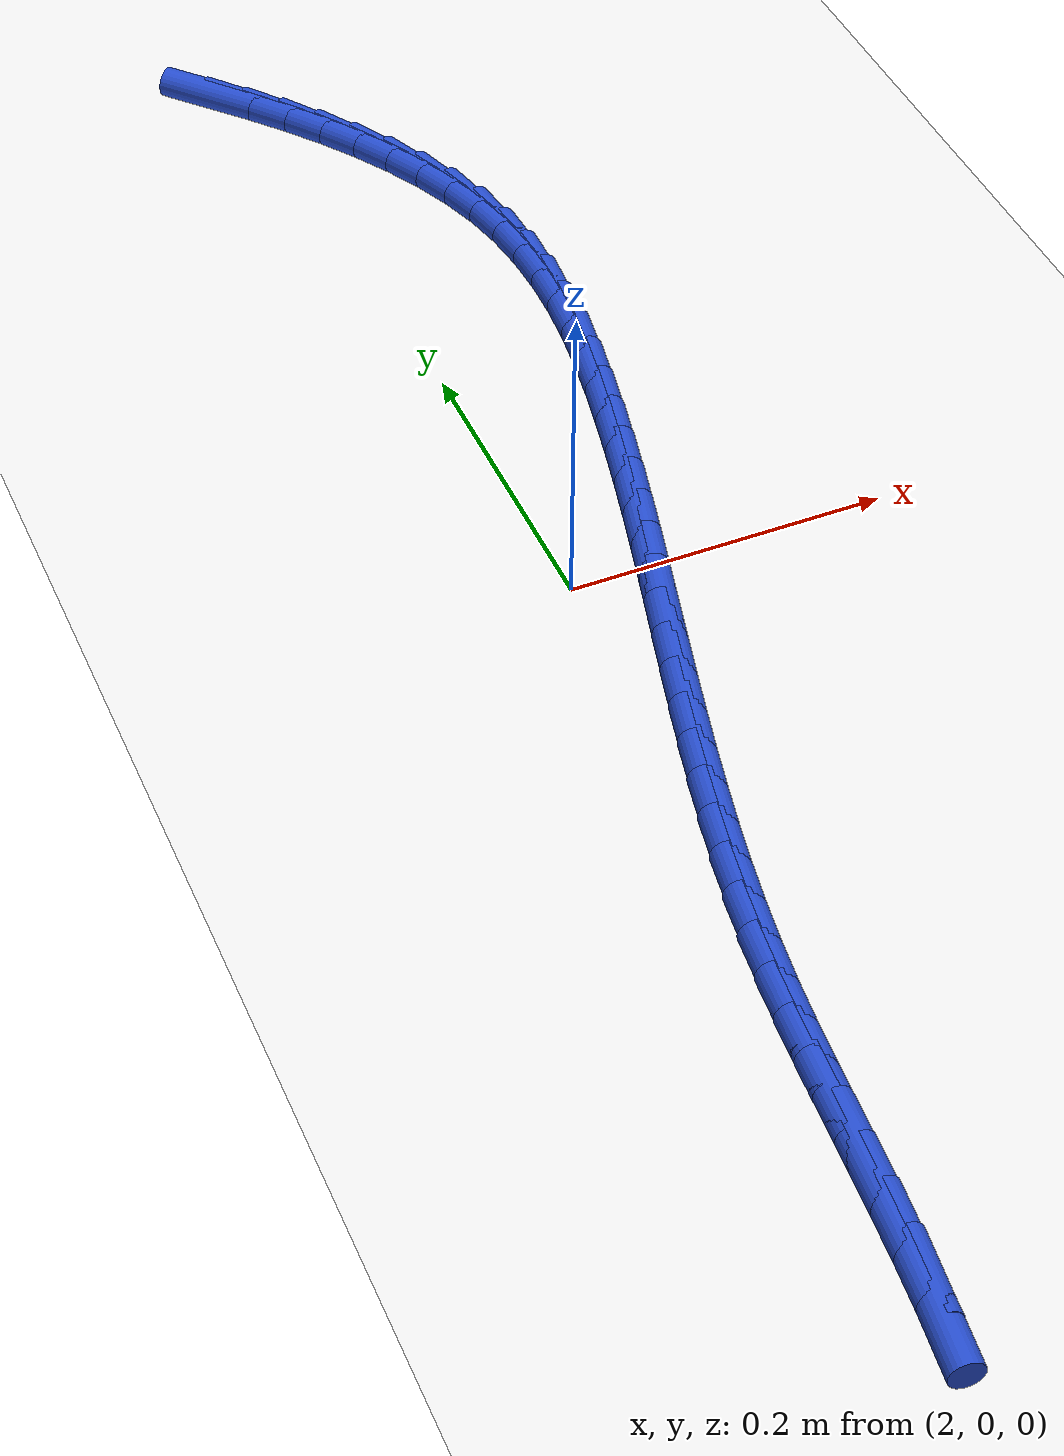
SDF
<sdf version="1.6">
 <world name="default">
  <model name="ground_plane">
   <static>1</static>
   <link name="link">
    <collision name="collision">
     <geometry><plane><normal>0 0 1</normal><size>100 100</size></plane></geometry>
     <surface><friction><ode><mu>100</mu><mu2>50</mu2></ode></friction></surface>
    </collision>
    <visual name="visual">
     <cast_shadows>0</cast_shadows>
     <geometry><plane><normal>0 0 1</normal><size>100 100</size></plane></geometry>
     <material>
      <script><uri>file://media/materials/scripts/gazebo.material</uri><name>Gazebo/WhiteGlow</name></script>
     </material>
    </visual>
   </link>
  </model>
  <model name="line">
   <link name="link_99">
    <pose>1.967739464041182 0.5320116297725063 0.01 0 1.57 -0.844578872773118</pose>
    <collision name="collision">
     <geometry><cylinder><radius>0.01</radius><length>0.08</length></cylinder></geometry>
    </collision>
    <visual name="visual">
     <material>
      <script><name>Gazebo/Blue</name><uri>file://media/materials/scripts/gazebo.material</uri></script>
     </material>
     <geometry><cylinder><radius>0.01</radius><length>0.08</length></cylinder></geometry>
    </visual>
   </link>
   <link name="link_100">
    <pose>1.9871933279019611 0.5101072970246364 0.01 0 1.57 -0.8795569927350394</pose>
    <collision name="collision">
     <geometry><cylinder><radius>0.01</radius><length>0.08</length></cylinder></geometry>
    </collision>
    <visual name="visual">
     <material>
      <script><name>Gazebo/Blue</name><uri>file://media/materials/scripts/gazebo.material</uri></script>
     </material>
     <geometry><cylinder><radius>0.01</radius><length>0.08</length></cylinder></geometry>
    </visual>
   </link>
   <link name="link_101">
    <pose>2.0057102659734163 0.48772821727000737 0.01 0 1.57 -0.9217736178952044</pose>
    <collision name="collision">
     <geometry><cylinder><radius>0.01</radius><length>0.08</length></cylinder></geometry>
    </collision>
    <visual name="visual">
     <material>
      <script><name>Gazebo/Blue</name><uri>file://media/materials/scripts/gazebo.material</uri></script>
     </material>
     <geometry><cylinder><radius>0.01</radius><length>0.08</length></cylinder></geometry>
    </visual>
   </link>
   <link name="link_102">
    <pose>2.0230717722713774 0.4648438856911025 0.01 0 1.57 -0.9718143163685902</pose>
    <collision name="collision">
     <geometry><cylinder><radius>0.01</radius><length>0.08</length></cylinder></geometry>
    </collision>
    <visual name="visual">
     <material>
      <script><name>Gazebo/Blue</name><uri>file://media/materials/scripts/gazebo.material</uri></script>
     </material>
     <geometry><cylinder><radius>0.01</radius><length>0.08</length></cylinder></geometry>
    </visual>
   </link>
   <link name="link_103">
    <pose>2.0390593408116717 0.4414237974704054 0.01 0 1.57 -1.030275212715098</pose>
    <collision name="collision">
     <geometry><cylinder><radius>0.01</radius><length>0.08</length></cylinder></geometry>
    </collision>
    <visual name="visual">
     <material>
      <script><name>Gazebo/Blue</name><uri>file://media/materials/scripts/gazebo.material</uri></script>
     </material>
     <geometry><cylinder><radius>0.01</radius><length>0.08</length></cylinder></geometry>
    </visual>
   </link>
   <link name="link_104">
    <pose>2.0534544656101263 0.4174374477903985 0.01 0 1.57 -1.097671587271682</pose>
    <collision name="collision">
     <geometry><cylinder><radius>0.01</radius><length>0.08</length></cylinder></geometry>
    </collision>
    <visual name="visual">
     <material>
      <script><name>Gazebo/Blue</name><uri>file://media/materials/scripts/gazebo.material</uri></script>
     </material>
     <geometry><cylinder><radius>0.01</radius><length>0.08</length></cylinder></geometry>
    </visual>
   </link>
   <link name="link_105">
    <pose>2.0660386406825704 0.3928543318335664 0.01 0 1.57 -1.1743032664804673</pose>
    <collision name="collision">
     <geometry><cylinder><radius>0.01</radius><length>0.08</length></cylinder></geometry>
    </collision>
    <visual name="visual">
     <material>
      <script><name>Gazebo/Blue</name><uri>file://media/materials/scripts/gazebo.material</uri></script>
     </material>
     <geometry><cylinder><radius>0.01</radius><length>0.08</length></cylinder></geometry>
    </visual>
   </link>
   <link name="link_106">
    <pose>2.076593360044831 0.36764394478239193 0.01 0 1.57 -1.2600786876019092</pose>
    <collision name="collision">
     <geometry><cylinder><radius>0.01</radius><length>0.08</length></cylinder></geometry>
    </collision>
    <visual name="visual">
     <material>
      <script><name>Gazebo/Blue</name><uri>file://media/materials/scripts/gazebo.material</uri></script>
     </material>
     <geometry><cylinder><radius>0.01</radius><length>0.08</length></cylinder></geometry>
    </visual>
   </link>
   <link name="link_107">
    <pose>2.0849001177127358 0.34177578181935847 0.01 0 1.57 -1.354156360849881</pose>
    <collision name="collision">
     <geometry><cylinder><radius>0.01</radius><length>0.08</length></cylinder></geometry>
    </collision>
    <visual name="visual">
     <material>
      <script><name>Gazebo/Blue</name><uri>file://media/materials/scripts/gazebo.material</uri></script>
     </material>
     <geometry><cylinder><radius>0.01</radius><length>0.08</length></cylinder></geometry>
    </visual>
   </link>
   <link name="link_108">
    <pose>2.0907447265742145 0.31522072444675137 0.01 0 1.57 -1.4476271907284055</pose>
    <collision name="collision">
     <geometry><cylinder><radius>0.01</radius><length>0.08</length></cylinder></geometry>
    </collision>
    <visual name="visual">
     <material>
      <script><name>Gazebo/Blue</name><uri>file://media/materials/scripts/gazebo.material</uri></script>
     </material>
     <geometry><cylinder><radius>0.01</radius><length>0.08</length></cylinder></geometry>
    </visual>
   </link>
   <link name="link_109">
    <pose>2.0941128295577474 0.2880137978450801 0.01 0 1.57 -1.5291035010781036</pose>
    <collision name="collision">
     <geometry><cylinder><radius>0.01</radius><length>0.08</length></cylinder></geometry>
    </collision>
    <visual name="visual">
     <material>
      <script><name>Gazebo/Blue</name><uri>file://media/materials/scripts/gazebo.material</uri></script>
     </material>
     <geometry><cylinder><radius>0.01</radius><length>0.08</length></cylinder></geometry>
    </visual>
   </link>
   <link name="link_110">
    <pose>2.095269807898744 0.2602798207208756 0.01 0 1.57 1.5435045320334146</pose>
    <collision name="collision">
     <geometry><cylinder><radius>0.01</radius><length>0.08</length></cylinder></geometry>
    </collision>
    <visual name="visual">
     <material>
      <script><name>Gazebo/Blue</name><uri>file://media/materials/scripts/gazebo.material</uri></script>
     </material>
     <geometry><cylinder><radius>0.01</radius><length>0.08</length></cylinder></geometry>
    </visual>
   </link>
   <link name="link_111">
    <pose>2.094501912422375 0.23215031073467257 0.01 0 1.57 1.4862425172288038</pose>
    <collision name="collision">
     <geometry><cylinder><radius>0.01</radius><length>0.08</length></cylinder></geometry>
    </collision>
    <visual name="visual">
     <material>
      <script><name>Gazebo/Blue</name><uri>file://media/materials/scripts/gazebo.material</uri></script>
     </material>
     <geometry><cylinder><radius>0.01</radius><length>0.08</length></cylinder></geometry>
    </visual>
   </link>
   <link name="link_112">
    <pose>2.092095393953812 0.20375678554700535 0.01 0 1.57 1.439780561433971</pose>
    <collision name="collision">
     <geometry><cylinder><radius>0.01</radius><length>0.08</length></cylinder></geometry>
    </collision>
    <visual name="visual">
     <material>
      <script><name>Gazebo/Blue</name><uri>file://media/materials/scripts/gazebo.material</uri></script>
     </material>
     <geometry><cylinder><radius>0.01</radius><length>0.08</length></cylinder></geometry>
    </visual>
   </link>
   <link name="link_113">
    <pose>2.088336503318222 0.1752307628184091 0.01 0 1.57 1.4032436742328394</pose>
    <collision name="collision">
     <geometry><cylinder><radius>0.01</radius><length>0.08</length></cylinder></geometry>
    </collision>
    <visual name="visual">
     <material>
      <script><name>Gazebo/Blue</name><uri>file://media/materials/scripts/gazebo.material</uri></script>
     </material>
     <geometry><cylinder><radius>0.01</radius><length>0.08</length></cylinder></geometry>
    </visual>
   </link>
   <link name="link_114">
    <pose>2.0835114913407766 0.1467037602094181 0.01 0 1.57 1.3759216600285897</pose>
    <collision name="collision">
     <geometry><cylinder><radius>0.01</radius><length>0.08</length></cylinder></geometry>
    </collision>
    <visual name="visual">
     <material>
      <script><name>Gazebo/Blue</name><uri>file://media/materials/scripts/gazebo.material</uri></script>
     </material>
     <geometry><cylinder><radius>0.01</radius><length>0.08</length></cylinder></geometry>
    </visual>
   </link>
   <link name="link_115">
    <pose>2.0779066088462588 0.11830729538026633 0.01 0 1.57 1.3563706733645702</pose>
    <collision name="collision">
     <geometry><cylinder><radius>0.01</radius><length>0.08</length></cylinder></geometry>
    </collision>
    <visual name="visual">
     <material>
      <script><name>Gazebo/Blue</name><uri>file://media/materials/scripts/gazebo.material</uri></script>
     </material>
     <geometry><cylinder><radius>0.01</radius><length>0.08</length></cylinder></geometry>
    </visual>
   </link>
   <link name="link_116">
    <pose>2.071773868976693 0.09014620880854537 0.01 0 1.57 1.340601947914418</pose>
    <collision name="collision">
     <geometry><cylinder><radius>0.01</radius><length>0.08</length></cylinder></geometry>
    </collision>
    <visual name="visual">
     <material>
      <script><name>Gazebo/Blue</name><uri>file://media/materials/scripts/gazebo.material</uri></script>
     </material>
     <geometry><cylinder><radius>0.01</radius><length>0.08</length></cylinder></geometry>
    </visual>
   </link>
   <link name="link_117">
    <pose>2.0652292538297217 0.062219348839097646 0.01 0 1.57 1.3277110402658368</pose>
    <collision name="collision">
     <geometry><cylinder><radius>0.01</radius><length>0.08</length></cylinder></geometry>
    </collision>
    <visual name="visual">
     <material>
      <script><name>Gazebo/Blue</name><uri>file://media/materials/scripts/gazebo.material</uri></script>
     </material>
     <geometry><cylinder><radius>0.01</radius><length>0.08</length></cylinder></geometry>
    </visual>
   </link>
   <link name="link_118">
    <pose>2.058354966121619 0.034499243731596546 0.01 0 1.57 1.3177502438669348</pose>
    <collision name="collision">
     <geometry><cylinder><radius>0.01</radius><length>0.08</length></cylinder></geometry>
    </collision>
    <visual name="visual">
     <material>
      <script><name>Gazebo/Blue</name><uri>file://media/materials/scripts/gazebo.material</uri></script>
     </material>
     <geometry><cylinder><radius>0.01</radius><length>0.08</length></cylinder></geometry>
    </visual>
   </link>
   <link name="link_119">
    <pose>2.051233208568664 0.006958421745715167 0.01 0 1.57 1.3107636661993747</pose>
    <collision name="collision">
     <geometry><cylinder><radius>0.01</radius><length>0.08</length></cylinder></geometry>
    </collision>
    <visual name="visual">
     <material>
      <script><name>Gazebo/Blue</name><uri>file://media/materials/scripts/gazebo.material</uri></script>
     </material>
     <geometry><cylinder><radius>0.01</radius><length>0.08</length></cylinder></geometry>
    </visual>
   </link>
   <link name="link_120">
    <pose>2.043946183887132 -0.020430588858872275 0.01 0 1.57 1.3067895665816873</pose>
    <collision name="collision">
     <geometry><cylinder><radius>0.01</radius><length>0.08</length></cylinder></geometry>
    </collision>
    <visual name="visual">
     <material>
      <script><name>Gazebo/Blue</name><uri>file://media/materials/scripts/gazebo.material</uri></script>
     </material>
     <geometry><cylinder><radius>0.01</radius><length>0.08</length></cylinder></geometry>
    </visual>
   </link>
   <link name="link_121">
    <pose>2.0365760947932996 -0.04769525982249276 0.01 0 1.57 1.3058620492889497</pose>
    <collision name="collision">
     <geometry><cylinder><radius>0.01</radius><length>0.08</length></cylinder></geometry>
    </collision>
    <visual name="visual">
     <material>
      <script><name>Gazebo/Blue</name><uri>file://media/materials/scripts/gazebo.material</uri></script>
     </material>
     <geometry><cylinder><radius>0.01</radius><length>0.08</length></cylinder></geometry>
    </visual>
   </link>
   <link name="link_122">
    <pose>2.0292051440034435 -0.0748630628854728 0.01 0 1.57 1.3080120203185635</pose>
    <collision name="collision">
     <geometry><cylinder><radius>0.01</radius><length>0.08</length></cylinder></geometry>
    </collision>
    <visual name="visual">
     <material>
      <script><name>Gazebo/Blue</name><uri>file://media/materials/scripts/gazebo.material</uri></script>
     </material>
     <geometry><cylinder><radius>0.01</radius><length>0.08</length></cylinder></geometry>
    </visual>
   </link>
   <link name="link_123">
    <pose>2.0219155342338397 -0.10196146978813897 0.01 0 1.57 1.3132673334983407</pose>
    <collision name="collision">
     <geometry><cylinder><radius>0.01</radius><length>0.08</length></cylinder></geometry>
    </collision>
    <visual name="visual">
     <material>
      <script><name>Gazebo/Blue</name><uri>file://media/materials/scripts/gazebo.material</uri></script>
     </material>
     <geometry><cylinder><radius>0.01</radius><length>0.08</length></cylinder></geometry>
    </visual>
   </link>
   <link name="link_124">
    <pose>2.014789468200765 -0.12901795227081783 0.01 0 1.57 1.3216520639338838</pose>
    <collision name="collision">
     <geometry><cylinder><radius>0.01</radius><length>0.08</length></cylinder></geometry>
    </collision>
    <visual name="visual">
     <material>
      <script><name>Gazebo/Blue</name><uri>file://media/materials/scripts/gazebo.material</uri></script>
     </material>
     <geometry><cylinder><radius>0.01</radius><length>0.08</length></cylinder></geometry>
    </visual>
   </link>
   <link name="link_125">
    <pose>2.0079091486204956 -0.15605998207383656 0.01 0 1.57 1.333184859082941</pose>
    <collision name="collision">
     <geometry><cylinder><radius>0.01</radius><length>0.08</length></cylinder></geometry>
    </collision>
    <visual name="visual">
     <material>
      <script><name>Gazebo/Blue</name><uri>file://media/materials/scripts/gazebo.material</uri></script>
     </material>
     <geometry><cylinder><radius>0.01</radius><length>0.08</length></cylinder></geometry>
    </visual>
   </link>
   <link name="link_126">
    <pose>2.00135677820931 -0.1831150309375204 0.01 0 1.57 1.3478763362199042</pose>
    <collision name="collision">
     <geometry><cylinder><radius>0.01</radius><length>0.08</length></cylinder></geometry>
    </collision>
    <visual name="visual">
     <material>
      <script><name>Gazebo/Blue</name><uri>file://media/materials/scripts/gazebo.material</uri></script>
     </material>
     <geometry><cylinder><radius>0.01</radius><length>0.08</length></cylinder></geometry>
    </visual>
   </link>
   <link name="link_127">
    <pose>1.995214559683482 -0.21021057060219658 0.01 0 1.57 1.3657255266738921</pose>
    <collision name="collision">
     <geometry><cylinder><radius>0.01</radius><length>0.08</length></cylinder></geometry>
    </collision>
    <visual name="visual">
     <material>
      <script><name>Gazebo/Blue</name><uri>file://media/materials/scripts/gazebo.material</uri></script>
     </material>
     <geometry><cylinder><radius>0.01</radius><length>0.08</length></cylinder></geometry>
    </visual>
   </link>
   <link name="link_128">
    <pose>1.9895646957592894 -0.23737407280819162 0.01 0 1.57 1.3867154190163347</pose>
    <collision name="collision">
     <geometry><cylinder><radius>0.01</radius><length>0.08</length></cylinder></geometry>
    </collision>
    <visual name="visual">
     <material>
      <script><name>Gazebo/Blue</name><uri>file://media/materials/scripts/gazebo.material</uri></script>
     </material>
     <geometry><cylinder><radius>0.01</radius><length>0.08</length></cylinder></geometry>
    </visual>
   </link>
   <link name="link_129">
    <pose>1.9844893891530089 -0.26463300929583206 0.01 0 1.57 1.410807731213002</pose>
    <collision name="collision">
     <geometry><cylinder><radius>0.01</radius><length>0.08</length></cylinder></geometry>
    </collision>
    <visual name="visual">
     <material>
      <script><name>Gazebo/Blue</name><uri>file://media/materials/scripts/gazebo.material</uri></script>
     </material>
     <geometry><cylinder><radius>0.01</radius><length>0.08</length></cylinder></geometry>
    </visual>
   </link>
   <link name="link_130">
    <pose>1.9800708425809164 -0.29201485180544456 0.01 0 1.57 1.4378739755833874</pose>
    <collision name="collision">
     <geometry><cylinder><radius>0.01</radius><length>0.08</length></cylinder></geometry>
    </collision>
    <visual name="visual">
     <material>
      <script><name>Gazebo/Blue</name><uri>file://media/materials/scripts/gazebo.material</uri></script>
     </material>
     <geometry><cylinder><radius>0.01</radius><length>0.08</length></cylinder></geometry>
    </visual>
   </link>
   <link name="link_131">
    <pose>1.9763895338102329 -0.31954673241738596 0.01 0 1.57 1.463984279523884</pose>
    <collision name="collision">
     <geometry><cylinder><radius>0.01</radius><length>0.08</length></cylinder></geometry>
    </collision>
    <visual name="visual">
     <material>
      <script><name>Gazebo/Blue</name><uri>file://media/materials/scripts/gazebo.material</uri></script>
     </material>
     <geometry><cylinder><radius>0.01</radius><length>0.08</length></cylinder></geometry>
    </visual>
   </link>
   <link name="link_132">
    <pose>1.973420786450736 -0.34723507729157216 0.01 0 1.57 1.483138592716658</pose>
    <collision name="collision">
     <geometry><cylinder><radius>0.01</radius><length>0.08</length></cylinder></geometry>
    </collision>
    <visual name="visual">
     <material>
      <script><name>Gazebo/Blue</name><uri>file://media/materials/scripts/gazebo.material</uri></script>
     </material>
     <geometry><cylinder><radius>0.01</radius><length>0.08</length></cylinder></geometry>
    </visual>
   </link>
   <link name="link_133">
    <pose>1.9709759750604967 -0.37505402935629056 0.01 0 1.57 1.4948806065752398</pose>
    <collision name="collision">
     <geometry><cylinder><radius>0.01</radius><length>0.08</length></cylinder></geometry>
    </collision>
    <visual name="visual">
     <material>
      <script><name>Gazebo/Blue</name><uri>file://media/materials/scripts/gazebo.material</uri></script>
     </material>
     <geometry><cylinder><radius>0.01</radius><length>0.08</length></cylinder></geometry>
    </visual>
   </link>
   <link name="link_134">
    <pose>1.968852258238822 -0.4029749322733224 0.01 0 1.57 1.4992799545215052</pose>
    <collision name="collision">
     <geometry><cylinder><radius>0.01</radius><length>0.08</length></cylinder></geometry>
    </collision>
    <visual name="visual">
     <material>
      <script><name>Gazebo/Blue</name><uri>file://media/materials/scripts/gazebo.material</uri></script>
     </material>
     <geometry><cylinder><radius>0.01</radius><length>0.08</length></cylinder></geometry>
    </visual>
   </link>
   <link name="link_135">
    <pose>1.9668467945850197 -0.43096912970444823 0.01 0 1.57 1.4963926065579354</pose>
    <collision name="collision">
     <geometry><cylinder><radius>0.01</radius><length>0.08</length></cylinder></geometry>
    </collision>
    <visual name="visual">
     <material>
      <script><name>Gazebo/Blue</name><uri>file://media/materials/scripts/gazebo.material</uri></script>
     </material>
     <geometry><cylinder><radius>0.01</radius><length>0.08</length></cylinder></geometry>
    </visual>
   </link>
   <link name="link_136">
    <pose>1.964756742698397 -0.45900796531144844 0.01 0 1.57 1.486254177364591</pose>
    <collision name="collision">
     <geometry><cylinder><radius>0.01</radius><length>0.08</length></cylinder></geometry>
    </collision>
    <visual name="visual">
     <material>
      <script><name>Gazebo/Blue</name><uri>file://media/materials/scripts/gazebo.material</uri></script>
     </material>
     <geometry><cylinder><radius>0.01</radius><length>0.08</length></cylinder></geometry>
    </visual>
   </link>
   <link name="link_137">
    <pose>1.9623792611782602 -0.48706278275610326 0.01 0 1.57 1.468884801739967</pose>
    <collision name="collision">
     <geometry><cylinder><radius>0.01</radius><length>0.08</length></cylinder></geometry>
    </collision>
    <visual name="visual">
     <material>
      <script><name>Gazebo/Blue</name><uri>file://media/materials/scripts/gazebo.material</uri></script>
     </material>
     <geometry><cylinder><radius>0.01</radius><length>0.08</length></cylinder></geometry>
    </visual>
   </link>
   <link name="link_138">
    <pose>1.9595115086239177 -0.5151049257001934 0.01 0 1.57 1.4443052303688555</pose>
    <collision name="collision">
     <geometry><cylinder><radius>0.01</radius><length>0.08</length></cylinder></geometry>
    </collision>
    <visual name="visual">
     <material>
      <script><name>Gazebo/Blue</name><uri>file://media/materials/scripts/gazebo.material</uri></script>
     </material>
     <geometry><cylinder><radius>0.01</radius><length>0.08</length></cylinder></geometry>
    </visual>
   </link>
  </model>
 </world>
</sdf>
